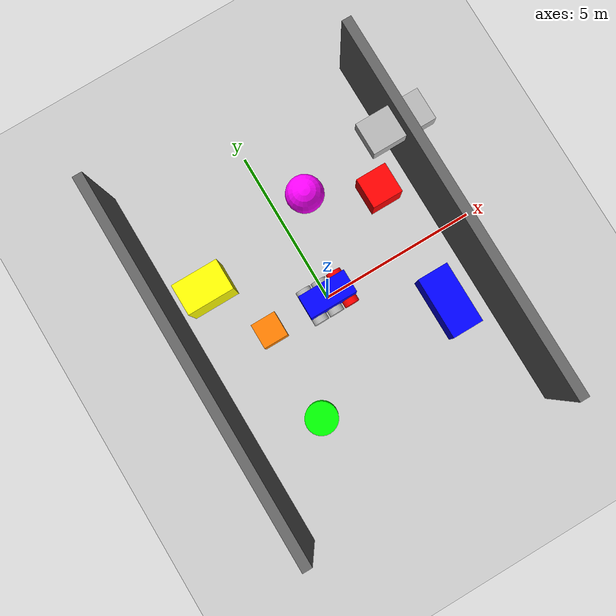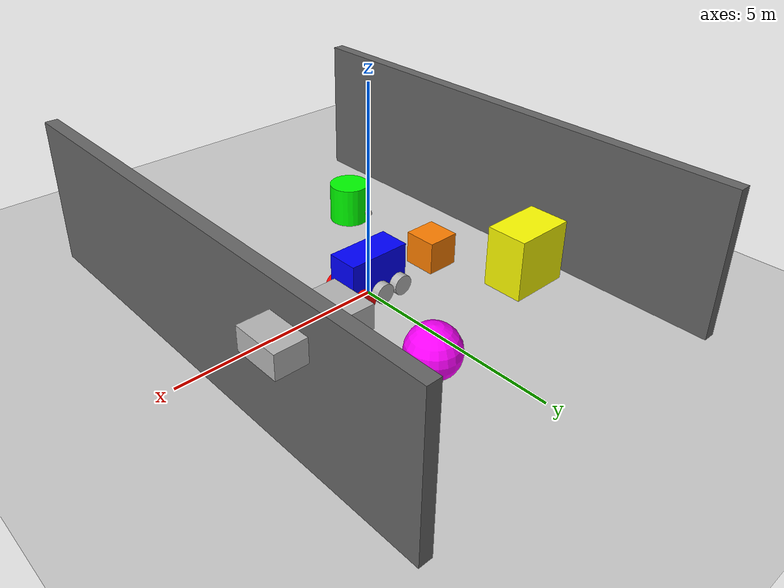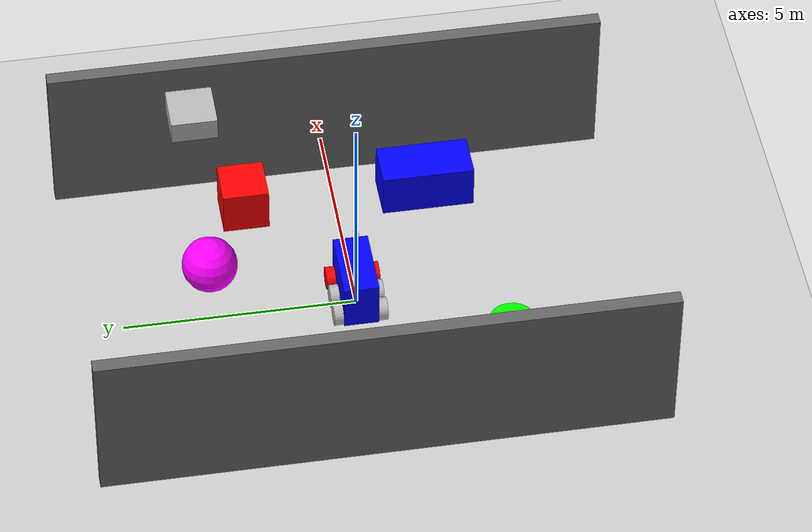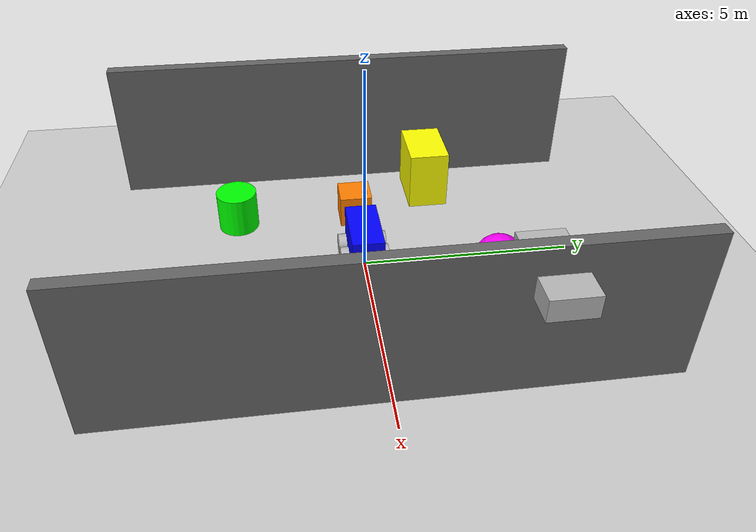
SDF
<sdf version="1.10">
 <world name="room">
  <physics name="1ms" type="ignored">
   <max_step_size>0.001</max_step_size>
   <real_time_factor>1.0</real_time_factor>
  </physics>
  <plugin filename="gz-sim-physics-system" name="gz::sim::systems::Physics"/>
  <plugin filename="gz-sim-user-commands-system" name="gz::sim::systems::UserCommands"/>
  <plugin filename="gz-sim-scene-broadcaster-system" name="gz::sim::systems::SceneBroadcaster"/>
  <plugin filename="gz-sim-imu-system" name="gz::sim::systems::Imu"/>
  <plugin filename="gz-sim-sensors-system" name="gz::sim::systems::Sensors">
   <render_engine>ogre2</render_engine>
  </plugin>
  <light type="directional" name="sun">
   <pose>0 0 10 0 0 0</pose>
   <diffuse>0.8 0.8 0.8 1</diffuse>
   <specular>0.2 0.2 0.2 1</specular>
   <attenuation>
    <range>1000</range>
    <constant>0.9</constant>
    <linear>0.01</linear>
    <quadratic>0.001</quadratic>
   </attenuation>
   <direction>-0.5 0.1 -0.9</direction>
  </light>
  <model name="ground_plane">
   <static>true</static>
   <link name="link">
    <collision name="collision"><geometry><plane><normal>0 0 1</normal></plane></geometry></collision>
    <visual name="visual">
     <geometry><plane><normal>0 0 1</normal><size>100 100</size></plane></geometry>
     <material>
      <ambient>0.8 0.8 0.8 1</ambient>
      <diffuse>0.8 0.8 0.8 1</diffuse>
      <specular>0.8 0.8 0.8 1</specular>
     </material>
    </visual>
   </link>
  </model>
  <include><uri>file:///workspace/prototypes/camera/FLIP.sdf</uri><name>FLIP</name></include>
  <include>
   <uri>file:///workspace/models/gazebo/obstacles/walls/verticalWall0_3x12x3_5</uri>
   <name>frontWall</name>
   <pose>4.2 0 1.75 0 0 0</pose>
  </include>
  <include>
   <uri>file:///workspace/models/gazebo/obstacles/walls/verticalWall0_3x12x3_5</uri>
   <name>backWall</name>
   <pose>-4.2 0 1.75 0 0 0</pose>
  </include>
  <include>
   <uri>file:///workspace/models/gazebo/obstacles/shapes/redCube1x1x1</uri>
   <name>redCube</name>
   <pose>3 2 0.5 0 0 0</pose>
  </include>
  <include>
   <uri>file:///workspace/models/gazebo/obstacles/shapes/greenCylinder0_5x1</uri>
   <name>greenCylinder</name>
   <pose>-2 -3 0.5 0 0 0</pose>
  </include>
  <include>
   <uri>file:///workspace/models/gazebo/obstacles/shapes/blueBox1x2x1</uri>
   <name>blueBox</name>
   <pose>3 -2 0.5 0 0 0</pose>
  </include>
  <include>
   <uri>file:///workspace/models/gazebo/obstacles/shapes/yellowBox1_5x1x1_5</uri>
   <name>yellowBox</name>
   <pose>-3 2 0.75 0 0 0</pose>
  </include>
  <include>
   <uri>file:///workspace/models/gazebo/obstacles/shapes/pinkBall0_6</uri>
   <name>pinkBall</name>
   <pose>1 3 0.6 0 0 0</pose>
  </include>
  <include>
   <uri>file:///workspace/models/gazebo/obstacles/shapes/orangeBox0_8x0_8x0_8</uri>
   <name>orangeBox</name>
   <pose>-2 0 0.4 0 0 0</pose>
  </include>
 </world>
</sdf>

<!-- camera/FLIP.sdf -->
<sdf version="1.10">
  <model name='FLIP' canonical_link='chassis'>
    <pose>0 0 0 0 0 0</pose>

    <link name='chassis'>
      <pose relative_to='__model__'>0 0 0.625 0 0 0</pose>
      <inertial>
        <pose>0 0 0 0 0 0</pose>
        <mass>450.0</mass>
        <inertia>
          <ixx>62.438</ixx>
          <ixy>0</ixy>
          <ixz>0</ixz>
          <iyy>131.438</iyy>
          <iyz>0</iyz>
          <izz>111.188</izz>
        </inertia>
      </inertial>
      <visual name='visual'>
        <geometry><box><size>1.55 0.75 1.05</size></box></geometry>
        <material>
          <ambient>0.0 0.0 1.0 1</ambient>
          <diffuse>0.0 0.0 1.0 1</diffuse>
          <specular>0.0 0.0 1.0 1</specular>
        </material>
      </visual>
      <collision name='collision'>
        <geometry><box><size>1.55 0.75 1.05</size></box></geometry>
      </collision>
      <sensor name="imu_sensor" type="imu">
        <always_on>1</always_on>
        <update_rate>20</update_rate>
        <visualize>true</visualize>
        <topic>imu</topic>
      </sensor>
      <sensor name="gpu_lidar" type="gpu_lidar">
        <pose>0.6 0 0.3 0 0 0</pose>
        <always_on>1</always_on>
        <update_rate>10</update_rate>
        <lidar>
          <scan>
            <horizontal>
              <samples>640</samples>
              <resolution>1</resolution>
              <min_angle>-1.396263</min_angle>
              <max_angle>1.396263</max_angle>
            </horizontal>
            <vertical>
              <samples>1</samples>
              <resolution>1</resolution>
              <min_angle>0</min_angle>
              <max_angle>0</max_angle>
            </vertical>
          </scan>
          <range>
            <min>0.08</min>
            <max>10.0</max>
            <resolution>0.01</resolution>
          </range>
        </lidar>
        <visualize>true</visualize>
        <topic>lidar</topic>
      </sensor>
    </link>

    <include>
      <uri>file:///workspace/prototypes/camera/camera.sdf</uri>
      <name>camera</name>
      <pose relative_to="chassis">
        0 0 2.05 0 0.3 0
      </pose>
    </include>

		<link name='block'>
			<pose relative_to='chassis'>
				4.0 3.0 2.0 0 0 0
			</pose>
			<inertial>
				<!--inertial properties of the link mass, inertia matix-->
				<mass>5</mass>
				<inertia>
					<ixx>0.095329</ixx>
					<ixy>0</ixy>
					<ixz>0</ixz>
					<iyy>0.381317</iyy>
					<iyz>0</iyz>
					<izz>0.476646</izz>
				</inertia>
			</inertial>
			<visual name='visual'>
				<geometry>
					<box>
						<size>2.0 1.0 0.5</size>
					</box>
				</geometry>
			</visual>
			<collision name='collision'>
				<geometry>
					<box>
						<size>2.0 1.0 0.5</size>
					</box>
				</geometry>
			</collision>
		</link>

    <link name='left_back_wheel'>
      <pose relative_to="chassis">
        -0.533 0.475 -0.383 -1.5707 0 0
      </pose>
      <inertial>
        <mass>5</mass>
        <inertia>
          <ixx>0.694</ixx>
          <ixy>0</ixy>
          <ixz>0</ixz>
          <iyy>1.460</iyy>
          <iyz>0</iyz>
          <izz>1.235</izz>
        </inertia>
      </inertial>
      <visual name='visual'>
        <geometry>
          <cylinder>
            <radius>0.242</radius>
            <length>0.2</length>
          </cylinder>
        </geometry>
      </visual>
      <collision name='collision'>
        <geometry>
          <cylinder>
            <radius>0.242</radius>
            <length>0.2</length>
          </cylinder>
        </geometry>
      </collision>
    </link>

    <link name='left_middle_wheel'>
      <pose relative_to="chassis">0 0.475 -0.383 -1.5707 0 0</pose>
      <inertial><mass>5</mass><inertia><ixx>0.694</ixx><ixy>0</ixy><ixz>0</ixz><iyy>1.460</iyy><iyz>0</iyz><izz>1.235</izz></inertia></inertial>
      <visual name='visual'><geometry><cylinder><radius>0.242</radius><length>0.2</length></cylinder></geometry></visual>
      <collision name='collision'><geometry><cylinder><radius>0.242</radius><length>0.2</length></cylinder></geometry></collision>
    </link>

    <link name='right_back_wheel'>
      <pose relative_to="chassis">-0.533 -0.475 -0.383 -1.5707 0 0</pose>
      <inertial><mass>5</mass><inertia><ixx>0.694</ixx><ixy>0</ixy><ixz>0</ixz><iyy>1.460</iyy><iyz>0</iyz><izz>1.235</izz></inertia></inertial>
      <visual name='visual'><geometry><cylinder><radius>0.242</radius><length>0.2</length></cylinder></geometry></visual>
      <collision name='collision'><geometry><cylinder><radius>0.242</radius><length>0.2</length></cylinder></geometry></collision>
    </link>

    <link name='right_middle_wheel'>
      <pose relative_to="chassis">0 -0.475 -0.383 -1.5707 0 0</pose>
      <inertial><mass>5</mass><inertia><ixx>0.694</ixx><ixy>0</ixy><ixz>0</ixz><iyy>1.460</iyy><iyz>0</iyz><izz>1.235</izz></inertia></inertial>
      <visual name='visual'><geometry><cylinder><radius>0.242</radius><length>0.2</length></cylinder></geometry></visual>
      <collision name='collision'><geometry><cylinder><radius>0.242</radius><length>0.2</length></cylinder></geometry></collision>
    </link>

    <link name='left_front_steer_link'>
      <pose relative_to="chassis">0.533 0.475 -0.383 0 0 0</pose>
      <inertial><mass>1.0</mass><inertia><ixx>0.01</ixx><ixy>0</ixy><ixz>0</ixz><iyy>0.01</iyy><iyz>0</iyz><izz>0.01</izz></inertia></inertial>
    </link>

    <link name='right_front_steer_link'>
      <pose relative_to="chassis">0.533 -0.475 -0.383 0 0 0</pose>
      <inertial><mass>1.0</mass><inertia><ixx>0.01</ixx><ixy>0</ixy><ixz>0</ixz><iyy>0.01</iyy><iyz>0</iyz><izz>0.01</izz></inertia></inertial>
    </link>

    <link name='left_front_wheel'>
      <pose relative_to="left_front_steer_link">0 0 0 -1.5707 0 0</pose>
      <inertial><mass>5</mass><inertia><ixx>0.694</ixx><ixy>0</ixy><ixz>0</ixz><iyy>1.460</iyy><iyz>0</iyz><izz>1.235</izz></inertia></inertial>
      <visual name='visual'>
        <geometry><cylinder><radius>0.242</radius><length>0.2</length></cylinder></geometry>
        <material><ambient>1.0 0.0 0.0 1</ambient><diffuse>1.0 0.0 0.0 1</diffuse><specular>1.0 0.0 0.0 1</specular></material>
      </visual>
      <collision name='collision'><geometry><cylinder><radius>0.242</radius><length>0.2</length></cylinder></geometry></collision>
    </link>

    <link name='right_front_wheel'>
      <pose relative_to="right_front_steer_link">0 0 0 -1.5707 0 0</pose>
      <inertial><mass>5</mass><inertia><ixx>0.694</ixx><ixy>0</ixy><ixz>0</ixz><iyy>1.460</iyy><iyz>0</iyz><izz>1.235</izz></inertia></inertial>
      <visual name='visual'>
        <geometry><cylinder><radius>0.242</radius><length>0.2</length></cylinder></geometry>
        <material><ambient>1.0 0.0 0.0 1</ambient><diffuse>1.0 0.0 0.0 1</diffuse><specular>1.0 0.0 0.0 1</specular></material>
      </visual>
      <collision name='collision'><geometry><cylinder><radius>0.242</radius><length>0.2</length></cylinder></geometry></collision>
    </link>

    <joint name='left_back_wheel_joint' type='revolute'>
      <parent>chassis</parent><child>left_back_wheel</child>
      <axis><xyz expressed_in='__model__'>0 1 0</xyz><limit><lower>-1.79769e+308</lower><upper>1.79769e+308</upper></limit></axis>
    </joint>
    <joint name='left_middle_wheel_joint' type='revolute'>
      <parent>chassis</parent><child>left_middle_wheel</child>
      <axis><xyz expressed_in='__model__'>0 1 0</xyz><limit><lower>-1.79769e+308</lower><upper>1.79769e+308</upper></limit></axis>
    </joint>
    <joint name='right_back_wheel_joint' type='revolute'>
      <parent>chassis</parent><child>right_back_wheel</child>
      <axis><xyz expressed_in='__model__'>0 1 0</xyz><limit><lower>-1.79769e+308</lower><upper>1.79769e+308</upper></limit></axis>
    </joint>
    <joint name='right_middle_wheel_joint' type='revolute'>
      <parent>chassis</parent><child>right_middle_wheel</child>
      <axis><xyz expressed_in='__model__'>0 1 0</xyz><limit><lower>-1.79769e+308</lower><upper>1.79769e+308</upper></limit></axis>
    </joint>
    <joint name='left_front_steering_joint' type='revolute'>
      <parent>chassis</parent><child>left_front_steer_link</child>
      <axis><xyz expressed_in='__model__'>0 0 1</xyz><limit><lower>-1.0</lower><upper>1.0</upper><effort>1000000</effort></limit></axis>
    </joint>
    <joint name='right_front_steering_joint' type='revolute'>
      <parent>chassis</parent><child>right_front_steer_link</child>
      <axis><xyz expressed_in='__model__'>0 0 1</xyz><limit><lower>-1.0</lower><upper>1.0</upper><effort>1000000</effort></limit></axis>
    </joint>
    <joint name='left_front_wheel_joint' type='revolute'>
      <parent>left_front_steer_link</parent><child>left_front_wheel</child>
      <axis><xyz expressed_in='__model__'>0 1 0</xyz><limit><lower>-1.79769e+308</lower><upper>1.79769e+308</upper></limit></axis>
    </joint>
    <joint name='right_front_wheel_joint' type='revolute'>
      <parent>right_front_steer_link</parent><child>right_front_wheel</child>
      <axis><xyz expressed_in='__model__'>0 1 0</xyz><limit><lower>-1.79769e+308</lower><upper>1.79769e+308</upper></limit></axis>
    </joint>

    <plugin filename="gz-sim-ackermann-steering-system" name="gz::sim::systems::AckermannSteering">
      <left_joint>left_back_wheel_joint</left_joint>
      <left_joint>left_middle_wheel_joint</left_joint>
      <left_joint>left_front_wheel_joint</left_joint>
      <right_joint>right_back_wheel_joint</right_joint>
      <right_joint>right_middle_wheel_joint</right_joint>
      <right_joint>right_front_wheel_joint</right_joint>
      <left_steering_joint>left_front_steering_joint</left_steering_joint>
      <right_steering_joint>right_front_steering_joint</right_steering_joint>
      <wheel_base>1.066</wheel_base>
      <wheel_separation>0.95</wheel_separation>
      <kingpin_width>0.95</kingpin_width>
      <wheel_radius>0.242</wheel_radius>
      <steering_limit>1.2</steering_limit>
      <topic>/model/FLIP/cmd_vel</topic>
      <odom_topic>/model/FLIP/odometry</odom_topic>
      <tf_topic>/model/FLIP/tf</tf_topic>
      <frame_id>odom</frame_id>
      <child_frame_id>base_link</child_frame_id>
      <odom_publish_frequency>10</odom_publish_frequency>

      <!-- Uncomment for smoother motion -->
    </plugin>
  </model>
</sdf>

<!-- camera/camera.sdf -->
<sdf version="1.10">

	<!-- Camera model -->
	<model name="camera_model" canonical_link="camera_body">
		<pose>0 0 0 0 0 0</pose>
		<static>true</static>

      <link name="camera_body">
        <pose relative_to='__model__'>
      </pose>
      <visual name="camera_visual">
        <geometry>
          <box>
            <size>0.1 0.1 0.1</size>
            <!-- Adjust size as needed -->
          </box>
        </geometry>
        <material>
          <ambient>0.5 0.5 0.5 1</ambient>
          <diffuse>0.7 0.7 0.7 1</diffuse>
          <specular>0.3 0.3 0.3 1</specular>
        </material>
      </visual>
      <collision name="camera_collision">
        <geometry>
          <box>
            <size>0.1 0.1 0.1</size>
            <!-- Match visual geometry -->
          </box>
        </geometry>
      </collision>
      <inertial>
        <mass>0.5</mass>
        <!-- Adjust mass as needed -->
        <inertia>
          <ixx>0.001</ixx>
          <ixy>0</ixy>
          <ixz>0</ixz>
          <iyy>0.001</iyy>
          <iyz>0</iyz>
          <izz>0.001</izz>
        </inertia>
      </inertial>
    </link>

		<link name="camera_link">
			<sensor name="camera" type="camera">
				<pose>0 0 0 0 0 0</pose>
				<always_on>true</always_on>
				<update_rate>30</update_rate>

				<camera>
					<horizontal_fov>1.047</horizontal_fov>
					<image>
						<width>640</width>
						<height>480</height>
						<format>R8G8B8</format>
					</image>
					<clip>
						<near>0.1</near>
						<far>100</far>
					</clip>
				</camera>

				<!-- Camera topic -->
				<topic>/camera/image</topic>
			</sensor>
		</link>
	</model>

</sdf>

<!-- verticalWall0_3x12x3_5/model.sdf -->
<sdf version="1.10">
    <model name="verticalWall0_3x12x3_5">
      <static>true</static>
      <pose>0 3.9 1.75 0 0 1.5708</pose>
      <link name="link">
        <collision name="collision">
          <geometry><box><size>0.3 12.0 3.5</size></box></geometry>
        </collision>
        <visual name="visual">
          <geometry><box><size>0.3 12.0 3.5</size></box></geometry>
          <material>
            <ambient>0.4 0.4 0.4 1</ambient>
            <diffuse>0.4 0.4 0.4 1</diffuse>
            <specular>0.2 0.2 0.2 1</specular>
          </material>
          <plugin
            filename="gz-sim-thermal-system"
            name="gz::sim::systems::Thermal">
            <temperature>292.1</temperature>
            <emissivity>0.9</emissivity>
          </plugin>
        </visual>
      </link>
    </model>
</sdf>

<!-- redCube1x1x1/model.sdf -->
<sdf version="1.10">
    <model name="redCube1x1x1">
      <static>true</static>
      <pose>3 2 0.5 0 0 0</pose>
      <link name="link">
        <collision name="collision">
          <geometry><box><size>1 1 1</size></box></geometry>
        </collision>
        <visual name="visual">
          <geometry><box><size>1 1 1</size></box></geometry>
          <material>
            <ambient>1 0 0 1</ambient>
            <diffuse>1 0 0 1</diffuse>
            <specular>0.5 0.5 0.5 1</specular>
          </material>
          <plugin
            filename="gz-sim-thermal-system"
            name="gz::sim::systems::Thermal">
            <temperature>373.50</temperature>
            <emissivity>0.9</emissivity>
          </plugin>
        </visual>
      </link>
    </model>
</sdf>

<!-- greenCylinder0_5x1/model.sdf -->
<sdf version="1.10">
    <model name="greenCylinder0_5x1">
      <static>true</static>
      <pose>-2 -3 0.5 0 0 0</pose>
      <link name="link">
        <temperature>120.0</temperature>
        <collision name="collision">
          <geometry><cylinder><radius>0.5</radius><length>1.0</length></cylinder></geometry>
        </collision>
        <visual name="visual">
          <geometry><cylinder><radius>0.5</radius><length>1.0</length></cylinder></geometry>
          <material>
            <ambient>0 1 0 1</ambient>
            <diffuse>0 1 0 1</diffuse>
          </material>
        <plugin
          filename="gz-sim-thermal-system"
          name="gz::sim::systems::Thermal">
          <temperature>340</temperature>
          <emissivity>0.9</emissivity>
        </plugin>
        </visual>
      </link>
    </model>
</sdf>

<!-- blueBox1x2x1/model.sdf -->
<sdf version="1.10">
    <model name="blueBox1x2x1">
      <static>true</static>
      <pose>3 -2 0.5 0 0 0</pose>
      <link name="link">
        <temperature>300.0</temperature>
        <collision name="collision">
          <geometry><box><size>1 2 1</size></box></geometry>
        </collision>
        <visual name="visual">
          <geometry><box><size>1 2 1</size></box></geometry>
          <material>
            <ambient>0 0 1 1</ambient>
            <diffuse>0 0 1 1</diffuse>
          </material>
          <plugin
            filename="gz-sim-thermal-system"
            name="gz::sim::systems::Thermal">
            <temperature>343.15</temperature>
          </plugin>
        </visual>
      </link>
    </model>
</sdf>

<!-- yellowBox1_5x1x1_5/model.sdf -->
<sdf version="1.10">
    <model name="yellowBox1_5x1x1_5">
      <static>true</static>
      <pose>-3 2 0.75 0 0 0</pose>
      <link name="link">
        <temperature>200.0</temperature>
        <collision name="collision">
          <geometry><box><size>1.5 1 1.5</size></box></geometry>
        </collision>
        <visual name="visual">
          <geometry><box><size>1.5 1 1.5</size></box></geometry>
          <material>
            <ambient>1 1 0 1</ambient>
            <diffuse>1 1 0 1</diffuse>
          </material>
          <plugin
            filename="gz-sim-thermal-system"
            name="gz::sim::systems::Thermal">
            <temperature>325</temperature>
            <emissivity>0.9</emissivity>
          </plugin>
        </visual>
      </link>
    </model>
</sdf>

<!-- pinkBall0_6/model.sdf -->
<sdf version="1.10">
    <model name="pinkBall0_6">
      <static>true</static>
      <pose>1 3 0.6 0 0 0</pose>
      <link name="link">
        <temperature>600.0</temperature>
        <collision name="collision">
          <geometry><sphere><radius>0.6</radius></sphere></geometry>
        </collision>
        <visual name="visual">
          <geometry><sphere><radius>0.6</radius></sphere></geometry>
          <material>
            <ambient>1 0 1 1</ambient>
            <diffuse>1 0 1 1</diffuse>
          </material>
          <plugin
            filename="gz-sim-thermal-system"
            name="gz::sim::systems::Thermal">
            <temperature>313.55</temperature>
            <emissivity>0.9</emissivity>
          </plugin>
        </visual>
      </link>
    </model>
</sdf>

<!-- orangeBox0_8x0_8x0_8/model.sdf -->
<sdf version="1.10">
<model name="orangeBox0_8x0_8x0_8">
  <static>true</static>
  <pose>-2 0 0.4 0 0 0</pose>
  <link name="link">

    <collision name="collision">
      <geometry>
        <box>
          <size>0.8 0.8 0.8</size>
        </box>
      </geometry>
    </collision>

    <!-- Orange box visual -->
    <visual name="visual">
      <geometry>
        <box>
          <size>0.8 0.8 0.8</size>
        </box>
      </geometry>
      <material>
        <ambient>1 0.5 0 1</ambient>
        <diffuse>1 0.5 0 1</diffuse>
      </material>
      <plugin
        filename="gz-sim-thermal-system"
        name="gz::sim::systems::Thermal">
        <temperature>513.15</temperature>
        <emissivity>0.9</emissivity>
      </plugin>
    </visual>

    <!-- Thermal core visual -->
    <visual name="thermal_core">
      <pose>0 0 0.25 1.5708 0 0</pose>
      <geometry>
        <sphere>
          <radius>0.08</radius>
        </sphere>
      </geometry>
      <material>
        <ambient>1 0.4 0 1</ambient>
        <diffuse>1 0.4 0 1</diffuse>
      </material>
      <plugin
        filename="gz-sim-thermal-system"
        name="gz::sim::systems::Thermal">
        <temperature>583.83</temperature>
        <emissivity>0.9</emissivity>
      </plugin>
    </visual>

    <!-- 3. CLEANED PARTICLE EMITTER: Removed invalid nested tags for Ionic -->
    <particle_emitter name="fire" type="box">
      <pose>0 0 0.25 1.5708 0 0</pose>
      <size>0.15 0.15 0.30</size>
      <rate>50</rate>
      <particle_size>0.05 0.05 0.05</particle_size>
      <lifetime>1</lifetime>
      <!-- Simplified for Ionic stability -->
      <min_velocity>2.5</min_velocity>
      <max_velocity>3.5</max_velocity>
      <color_start>0.6 0 0 0</color_start>
      <color_end>1 0.8 0.2 1</color_end>
      <scale_rate>0.4</scale_rate>
      <emitting>true</emitting>
    </particle_emitter>

  </link>
</model>
</sdf>
